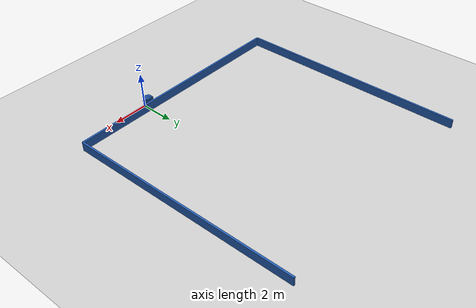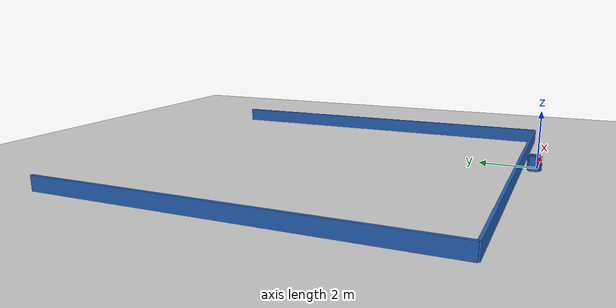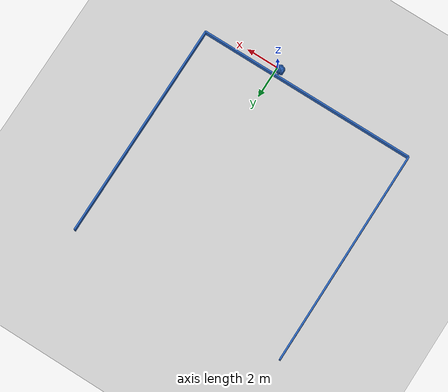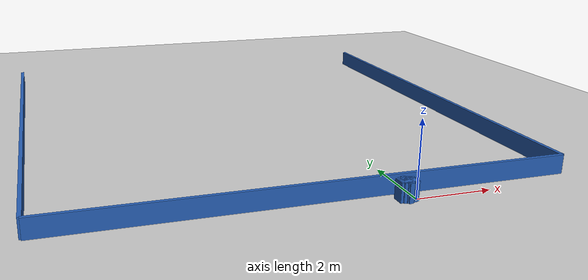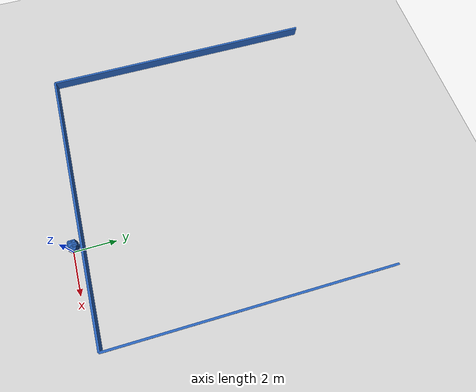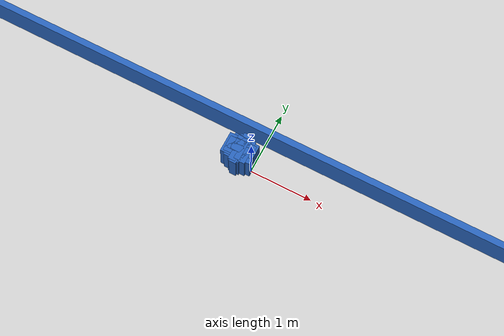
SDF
<?xml version="1.0" ?>
    <sdf version="1.5">
      <world name="default">
        <!-- A global light source -->
        <include>
          <uri>model://sun</uri>
        </include>
        <!-- A ground plane -->
        <include>
          <uri>model://ground_plane</uri>
        </include>

    <model name='libopen_space_final_T2B_106_71'>
      <static>1</static>
      <pose frame=''>-0.225000 0.075000 0.000000 0.000000 0.000000 0.000000</pose>
      <link name='link'>
        <inertial>
          <mass>1</mass>
          <inertia>
            <ixx>0.145833</ixx>
            <ixy>0</ixy>
            <ixz>0</ixz>
            <iyy>0.145833</iyy>
            <iyz>0</iyz>
            <izz>0.125</izz>
          </inertia>
        </inertial>
        <collision name='collision'>
          <geometry>
            <box>
              <size>0.35 0.14 1</size>
            </box>
          </geometry>
          <max_contacts>10</max_contacts>
          <surface>
            <contact>
              <ode/>
            </contact>
            <bounce/>
            <friction>
              <torsional>
                <ode/>
              </torsional>
              <ode/>
            </friction>
          </surface>
        </collision>
        <visual name='visual'>
          <geometry>
            <box>
              <size>0.35 0.14 1</size>
            </box>
          </geometry>
	    <material>
              <ambient>0.152000 0.379000 0.720000 1</ambient>
	      <diffuse>0.152000 0.379000 0.720000 1</diffuse>
          </material>
          <material>
            <script>
              <name>Gazebo/Grey</name>
              <uri>file://media/materials/scripts/gazebo.material</uri>
            </script>
          </material>
        </visual>
        <self_collide>0</self_collide>
        <kinematic>0</kinematic>
        <gravity>1</gravity>
      </link>
      <plugin name='libopen_space_final_T2B_106_71' filename='libopen_space_final_T2B_106_71.so'/>
    </model>

    <model name='libopen_space_final_T2B_67_46'>
      <static>1</static>
      <pose frame=''>-0.225000 0.075000 0.000000 0.000000 0.000000 0.000000</pose>
      <link name='link'>
        <inertial>
          <mass>1</mass>
          <inertia>
            <ixx>0.145833</ixx>
            <ixy>0</ixy>
            <ixz>0</ixz>
            <iyy>0.145833</iyy>
            <iyz>0</iyz>
            <izz>0.125</izz>
          </inertia>
        </inertial>
        <collision name='collision'>
          <geometry>
            <box>
              <size>0.26 0.13 1</size>
            </box>
          </geometry>
          <max_contacts>10</max_contacts>
          <surface>
            <contact>
              <ode/>
            </contact>
            <bounce/>
            <friction>
              <torsional>
                <ode/>
              </torsional>
              <ode/>
            </friction>
          </surface>
        </collision>
        <visual name='visual'>
          <geometry>
            <box>
              <size>0.26 0.13 1</size>
            </box>
          </geometry>
	    <material>
              <ambient>0.152000 0.379000 0.720000 1</ambient>
	      <diffuse>0.152000 0.379000 0.720000 1</diffuse>
          </material>
          <material>
            <script>
              <name>Gazebo/Grey</name>
              <uri>file://media/materials/scripts/gazebo.material</uri>
            </script>
          </material>
        </visual>
        <self_collide>0</self_collide>
        <kinematic>0</kinematic>
        <gravity>1</gravity>
      </link>
      <plugin name='libopen_space_final_T2B_67_46' filename='libopen_space_final_T2B_67_46.so'/>
    </model>

    <model name='libopen_space_final_T2B_80_26'>
      <static>1</static>
      <pose frame=''>-0.225000 0.075000 0.000000 0.000000 0.000000 0.000000</pose>
      <link name='link'>
        <inertial>
          <mass>1</mass>
          <inertia>
            <ixx>0.145833</ixx>
            <ixy>0</ixy>
            <ixz>0</ixz>
            <iyy>0.145833</iyy>
            <iyz>0</iyz>
            <izz>0.125</izz>
          </inertia>
        </inertial>
        <collision name='collision'>
          <geometry>
            <box>
              <size>0.17 0.18 1</size>
            </box>
          </geometry>
          <max_contacts>10</max_contacts>
          <surface>
            <contact>
              <ode/>
            </contact>
            <bounce/>
            <friction>
              <torsional>
                <ode/>
              </torsional>
              <ode/>
            </friction>
          </surface>
        </collision>
        <visual name='visual'>
          <geometry>
            <box>
              <size>0.17 0.18 1</size>
            </box>
          </geometry>
	    <material>
              <ambient>0.152000 0.379000 0.720000 1</ambient>
	      <diffuse>0.152000 0.379000 0.720000 1</diffuse>
          </material>
          <material>
            <script>
              <name>Gazebo/Grey</name>
              <uri>file://media/materials/scripts/gazebo.material</uri>
            </script>
          </material>
        </visual>
        <self_collide>0</self_collide>
        <kinematic>0</kinematic>
        <gravity>1</gravity>
      </link>
      <plugin name='libopen_space_final_T2B_80_26' filename='libopen_space_final_T2B_80_26.so'/>
    </model>

    <model name='libopen_space_final_T2B_118_50'>
      <static>1</static>
      <pose frame=''>-0.225000 0.075000 0.000000 0.000000 0.000000 0.000000</pose>
      <link name='link'>
        <inertial>
          <mass>1</mass>
          <inertia>
            <ixx>0.145833</ixx>
            <ixy>0</ixy>
            <ixz>0</ixz>
            <iyy>0.145833</iyy>
            <iyz>0</iyz>
            <izz>0.125</izz>
          </inertia>
        </inertial>
        <collision name='collision'>
          <geometry>
            <box>
              <size>0.42 0.26 1</size>
            </box>
          </geometry>
          <max_contacts>10</max_contacts>
          <surface>
            <contact>
              <ode/>
            </contact>
            <bounce/>
            <friction>
              <torsional>
                <ode/>
              </torsional>
              <ode/>
            </friction>
          </surface>
        </collision>
        <visual name='visual'>
          <geometry>
            <box>
              <size>0.42 0.26 1</size>
            </box>
          </geometry>
	    <material>
              <ambient>0.152000 0.379000 0.720000 1</ambient>
	      <diffuse>0.152000 0.379000 0.720000 1</diffuse>
          </material>
          <material>
            <script>
              <name>Gazebo/Grey</name>
              <uri>file://media/materials/scripts/gazebo.material</uri>
            </script>
          </material>
        </visual>
        <self_collide>0</self_collide>
        <kinematic>0</kinematic>
        <gravity>1</gravity>
      </link>
      <plugin name='libopen_space_final_T2B_118_50' filename='libopen_space_final_T2B_118_50.so'/>
    </model>

    <model name='libopen_space_final_T2B_112_98'>
      <static>1</static>
      <pose frame=''>-0.225000 0.075000 0.000000 0.000000 0.000000 0.000000</pose>
      <link name='link'>
        <inertial>
          <mass>1</mass>
          <inertia>
            <ixx>0.145833</ixx>
            <ixy>0</ixy>
            <ixz>0</ixz>
            <iyy>0.145833</iyy>
            <iyz>0</iyz>
            <izz>0.125</izz>
          </inertia>
        </inertial>
        <collision name='collision'>
          <geometry>
            <box>
              <size>0.15 0.35 1</size>
            </box>
          </geometry>
          <max_contacts>10</max_contacts>
          <surface>
            <contact>
              <ode/>
            </contact>
            <bounce/>
            <friction>
              <torsional>
                <ode/>
              </torsional>
              <ode/>
            </friction>
          </surface>
        </collision>
        <visual name='visual'>
          <geometry>
            <box>
              <size>0.15 0.35 1</size>
            </box>
          </geometry>
	    <material>
              <ambient>0.152000 0.379000 0.720000 1</ambient>
	      <diffuse>0.152000 0.379000 0.720000 1</diffuse>
          </material>
          <material>
            <script>
              <name>Gazebo/Grey</name>
              <uri>file://media/materials/scripts/gazebo.material</uri>
            </script>
          </material>
        </visual>
        <self_collide>0</self_collide>
        <kinematic>0</kinematic>
        <gravity>1</gravity>
      </link>
      <plugin name='libopen_space_final_T2B_112_98' filename='libopen_space_final_T2B_112_98.so'/>
    </model>

    <model name='libopen_space_final_T2B_56_75'>
      <static>1</static>
      <pose frame=''>-0.225000 0.075000 0.000000 0.000000 0.000000 0.000000</pose>
      <link name='link'>
        <inertial>
          <mass>1</mass>
          <inertia>
            <ixx>0.145833</ixx>
            <ixy>0</ixy>
            <ixz>0</ixz>
            <iyy>0.145833</iyy>
            <iyz>0</iyz>
            <izz>0.125</izz>
          </inertia>
        </inertial>
        <collision name='collision'>
          <geometry>
            <box>
              <size>0.48 0.32 1</size>
            </box>
          </geometry>
          <max_contacts>10</max_contacts>
          <surface>
            <contact>
              <ode/>
            </contact>
            <bounce/>
            <friction>
              <torsional>
                <ode/>
              </torsional>
              <ode/>
            </friction>
          </surface>
        </collision>
        <visual name='visual'>
          <geometry>
            <box>
              <size>0.48 0.32 1</size>
            </box>
          </geometry>
	    <material>
              <ambient>0.152000 0.379000 0.720000 1</ambient>
	      <diffuse>0.152000 0.379000 0.720000 1</diffuse>
          </material>
          <material>
            <script>
              <name>Gazebo/Grey</name>
              <uri>file://media/materials/scripts/gazebo.material</uri>
            </script>
          </material>
        </visual>
        <self_collide>0</self_collide>
        <kinematic>0</kinematic>
        <gravity>1</gravity>
      </link>
      <plugin name='libopen_space_final_T2B_56_75' filename='libopen_space_final_T2B_56_75.so'/>
    </model>

    <model name='libopen_space_final_T2B_126_78'>
      <static>1</static>
      <pose frame=''>-0.225000 0.075000 0.000000 0.000000 0.000000 0.000000</pose>
      <link name='link'>
        <inertial>
          <mass>1</mass>
          <inertia>
            <ixx>0.145833</ixx>
            <ixy>0</ixy>
            <ixz>0</ixz>
            <iyy>0.145833</iyy>
            <iyz>0</iyz>
            <izz>0.125</izz>
          </inertia>
        </inertial>
        <collision name='collision'>
          <geometry>
            <box>
              <size>0.22 0.24 1</size>
            </box>
          </geometry>
          <max_contacts>10</max_contacts>
          <surface>
            <contact>
              <ode/>
            </contact>
            <bounce/>
            <friction>
              <torsional>
                <ode/>
              </torsional>
              <ode/>
            </friction>
          </surface>
        </collision>
        <visual name='visual'>
          <geometry>
            <box>
              <size>0.22 0.24 1</size>
            </box>
          </geometry>
	    <material>
              <ambient>0.152000 0.379000 0.720000 1</ambient>
	      <diffuse>0.152000 0.379000 0.720000 1</diffuse>
          </material>
          <material>
            <script>
              <name>Gazebo/Grey</name>
              <uri>file://media/materials/scripts/gazebo.material</uri>
            </script>
          </material>
        </visual>
        <self_collide>0</self_collide>
        <kinematic>0</kinematic>
        <gravity>1</gravity>
      </link>
      <plugin name='libopen_space_final_T2B_126_78' filename='libopen_space_final_T2B_126_78.so'/>
    </model>

    <model name='libopen_space_final_T2B_127_53'>
      <static>1</static>
      <pose frame=''>-0.225000 0.075000 0.000000 0.000000 0.000000 0.000000</pose>
      <link name='link'>
        <inertial>
          <mass>1</mass>
          <inertia>
            <ixx>0.145833</ixx>
            <ixy>0</ixy>
            <ixz>0</ixz>
            <iyy>0.145833</iyy>
            <iyz>0</iyz>
            <izz>0.125</izz>
          </inertia>
        </inertial>
        <collision name='collision'>
          <geometry>
            <box>
              <size>0.20 0.31 1</size>
            </box>
          </geometry>
          <max_contacts>10</max_contacts>
          <surface>
            <contact>
              <ode/>
            </contact>
            <bounce/>
            <friction>
              <torsional>
                <ode/>
              </torsional>
              <ode/>
            </friction>
          </surface>
        </collision>
        <visual name='visual'>
          <geometry>
            <box>
              <size>0.20 0.31 1</size>
            </box>
          </geometry>
	    <material>
              <ambient>0.152000 0.379000 0.720000 1</ambient>
	      <diffuse>0.152000 0.379000 0.720000 1</diffuse>
          </material>
          <material>
            <script>
              <name>Gazebo/Grey</name>
              <uri>file://media/materials/scripts/gazebo.material</uri>
            </script>
          </material>
        </visual>
        <self_collide>0</self_collide>
        <kinematic>0</kinematic>
        <gravity>1</gravity>
      </link>
      <plugin name='libopen_space_final_T2B_127_53' filename='libopen_space_final_T2B_127_53.so'/>
    </model>

    <model name='libopen_space_final_T2B_139_84'>
      <static>1</static>
      <pose frame=''>-0.225000 0.075000 0.000000 0.000000 0.000000 0.000000</pose>
      <link name='link'>
        <inertial>
          <mass>1</mass>
          <inertia>
            <ixx>0.145833</ixx>
            <ixy>0</ixy>
            <ixz>0</ixz>
            <iyy>0.145833</iyy>
            <iyz>0</iyz>
            <izz>0.125</izz>
          </inertia>
        </inertial>
        <collision name='collision'>
          <geometry>
            <box>
              <size>0.29 0.27 1</size>
            </box>
          </geometry>
          <max_contacts>10</max_contacts>
          <surface>
            <contact>
              <ode/>
            </contact>
            <bounce/>
            <friction>
              <torsional>
                <ode/>
              </torsional>
              <ode/>
            </friction>
          </surface>
        </collision>
        <visual name='visual'>
          <geometry>
            <box>
              <size>0.29 0.27 1</size>
            </box>
          </geometry>
	    <material>
              <ambient>0.152000 0.379000 0.720000 1</ambient>
	      <diffuse>0.152000 0.379000 0.720000 1</diffuse>
          </material>
          <material>
            <script>
              <name>Gazebo/Grey</name>
              <uri>file://media/materials/scripts/gazebo.material</uri>
            </script>
          </material>
        </visual>
        <self_collide>0</self_collide>
        <kinematic>0</kinematic>
        <gravity>1</gravity>
      </link>
      <plugin name='libopen_space_final_T2B_139_84' filename='libopen_space_final_T2B_139_84.so'/>
    </model>

    <model name='libopen_space_final_T2B_77_58'>
      <static>1</static>
      <pose frame=''>-0.225000 0.075000 0.000000 0.000000 0.000000 0.000000</pose>
      <link name='link'>
        <inertial>
          <mass>1</mass>
          <inertia>
            <ixx>0.145833</ixx>
            <ixy>0</ixy>
            <ixz>0</ixz>
            <iyy>0.145833</iyy>
            <iyz>0</iyz>
            <izz>0.125</izz>
          </inertia>
        </inertial>
        <collision name='collision'>
          <geometry>
            <box>
              <size>0.23 0.36 1</size>
            </box>
          </geometry>
          <max_contacts>10</max_contacts>
          <surface>
            <contact>
              <ode/>
            </contact>
            <bounce/>
            <friction>
              <torsional>
                <ode/>
              </torsional>
              <ode/>
            </friction>
          </surface>
        </collision>
        <visual name='visual'>
          <geometry>
            <box>
              <size>0.23 0.36 1</size>
            </box>
          </geometry>
	    <material>
              <ambient>0.152000 0.379000 0.720000 1</ambient>
	      <diffuse>0.152000 0.379000 0.720000 1</diffuse>
          </material>
          <material>
            <script>
              <name>Gazebo/Grey</name>
              <uri>file://media/materials/scripts/gazebo.material</uri>
            </script>
          </material>
        </visual>
        <self_collide>0</self_collide>
        <kinematic>0</kinematic>
        <gravity>1</gravity>
      </link>
      <plugin name='libopen_space_final_T2B_77_58' filename='libopen_space_final_T2B_77_58.so'/>
    </model>

    <model name='libopen_space_final_T2B_94_79'>
      <static>1</static>
      <pose frame=''>-0.225000 0.075000 0.000000 0.000000 0.000000 0.000000</pose>
      <link name='link'>
        <inertial>
          <mass>1</mass>
          <inertia>
            <ixx>0.145833</ixx>
            <ixy>0</ixy>
            <ixz>0</ixz>
            <iyy>0.145833</iyy>
            <iyz>0</iyz>
            <izz>0.125</izz>
          </inertia>
        </inertial>
        <collision name='collision'>
          <geometry>
            <box>
              <size>0.34 0.38 1</size>
            </box>
          </geometry>
          <max_contacts>10</max_contacts>
          <surface>
            <contact>
              <ode/>
            </contact>
            <bounce/>
            <friction>
              <torsional>
                <ode/>
              </torsional>
              <ode/>
            </friction>
          </surface>
        </collision>
        <visual name='visual'>
          <geometry>
            <box>
              <size>0.34 0.38 1</size>
            </box>
          </geometry>
	    <material>
              <ambient>0.152000 0.379000 0.720000 1</ambient>
	      <diffuse>0.152000 0.379000 0.720000 1</diffuse>
          </material>
          <material>
            <script>
              <name>Gazebo/Grey</name>
              <uri>file://media/materials/scripts/gazebo.material</uri>
            </script>
          </material>
        </visual>
        <self_collide>0</self_collide>
        <kinematic>0</kinematic>
        <gravity>1</gravity>
      </link>
      <plugin name='libopen_space_final_T2B_94_79' filename='libopen_space_final_T2B_94_79.so'/>
    </model>

    <model name='libopen_space_final_T2B_99_64'>
      <static>1</static>
      <pose frame=''>-0.225000 0.075000 0.000000 0.000000 0.000000 0.000000</pose>
      <link name='link'>
        <inertial>
          <mass>1</mass>
          <inertia>
            <ixx>0.145833</ixx>
            <ixy>0</ixy>
            <ixz>0</ixz>
            <iyy>0.145833</iyy>
            <iyz>0</iyz>
            <izz>0.125</izz>
          </inertia>
        </inertial>
        <collision name='collision'>
          <geometry>
            <box>
              <size>0.17 0.43 1</size>
            </box>
          </geometry>
          <max_contacts>10</max_contacts>
          <surface>
            <contact>
              <ode/>
            </contact>
            <bounce/>
            <friction>
              <torsional>
                <ode/>
              </torsional>
              <ode/>
            </friction>
          </surface>
        </collision>
        <visual name='visual'>
          <geometry>
            <box>
              <size>0.17 0.43 1</size>
            </box>
          </geometry>
	    <material>
              <ambient>0.152000 0.379000 0.720000 1</ambient>
	      <diffuse>0.152000 0.379000 0.720000 1</diffuse>
          </material>
          <material>
            <script>
              <name>Gazebo/Grey</name>
              <uri>file://media/materials/scripts/gazebo.material</uri>
            </script>
          </material>
        </visual>
        <self_collide>0</self_collide>
        <kinematic>0</kinematic>
        <gravity>1</gravity>
      </link>
      <plugin name='libopen_space_final_T2B_99_64' filename='libopen_space_final_T2B_99_64.so'/>
    </model>

    <model name='libopen_space_final_T2B_116_74'>
      <static>1</static>
      <pose frame=''>-0.225000 0.075000 0.000000 0.000000 0.000000 0.000000</pose>
      <link name='link'>
        <inertial>
          <mass>1</mass>
          <inertia>
            <ixx>0.145833</ixx>
            <ixy>0</ixy>
            <ixz>0</ixz>
            <iyy>0.145833</iyy>
            <iyz>0</iyz>
            <izz>0.125</izz>
          </inertia>
        </inertial>
        <collision name='collision'>
          <geometry>
            <box>
              <size>0.11 0.49 1</size>
            </box>
          </geometry>
          <max_contacts>10</max_contacts>
          <surface>
            <contact>
              <ode/>
            </contact>
            <bounce/>
            <friction>
              <torsional>
                <ode/>
              </torsional>
              <ode/>
            </friction>
          </surface>
        </collision>
        <visual name='visual'>
          <geometry>
            <box>
              <size>0.11 0.49 1</size>
            </box>
          </geometry>
	    <material>
              <ambient>0.152000 0.379000 0.720000 1</ambient>
	      <diffuse>0.152000 0.379000 0.720000 1</diffuse>
          </material>
          <material>
            <script>
              <name>Gazebo/Grey</name>
              <uri>file://media/materials/scripts/gazebo.material</uri>
            </script>
          </material>
        </visual>
        <self_collide>0</self_collide>
        <kinematic>0</kinematic>
        <gravity>1</gravity>
      </link>
      <plugin name='libopen_space_final_T2B_116_74' filename='libopen_space_final_T2B_116_74.so'/>
    </model>

    <model name='libopen_space_final_T2B_90_76'>
      <static>1</static>
      <pose frame=''>-0.225000 0.075000 0.000000 0.000000 0.000000 0.000000</pose>
      <link name='link'>
        <inertial>
          <mass>1</mass>
          <inertia>
            <ixx>0.145833</ixx>
            <ixy>0</ixy>
            <ixz>0</ixz>
            <iyy>0.145833</iyy>
            <iyz>0</iyz>
            <izz>0.125</izz>
          </inertia>
        </inertial>
        <collision name='collision'>
          <geometry>
            <box>
              <size>0.42 0.23 1</size>
            </box>
          </geometry>
          <max_contacts>10</max_contacts>
          <surface>
            <contact>
              <ode/>
            </contact>
            <bounce/>
            <friction>
              <torsional>
                <ode/>
              </torsional>
              <ode/>
            </friction>
          </surface>
        </collision>
        <visual name='visual'>
          <geometry>
            <box>
              <size>0.42 0.23 1</size>
            </box>
          </geometry>
	    <material>
              <ambient>0.152000 0.379000 0.720000 1</ambient>
	      <diffuse>0.152000 0.379000 0.720000 1</diffuse>
          </material>
          <material>
            <script>
              <name>Gazebo/Grey</name>
              <uri>file://media/materials/scripts/gazebo.material</uri>
            </script>
          </material>
        </visual>
        <self_collide>0</self_collide>
        <kinematic>0</kinematic>
        <gravity>1</gravity>
      </link>
      <plugin name='libopen_space_final_T2B_90_76' filename='libopen_space_final_T2B_90_76.so'/>
    </model>

        <model name='bottom_wall'>
          <static>1</static>
          <pose frame=''>-2.25 0.5 0.000000 0.000000 0.000000 1.57079632</pose>
          <link name='link'>
            <inertial>
            <mass>1</mass>
            <inertia>
              <ixx>0.145833</ixx>
              <ixy>0</ixy>
              <ixz>0</ixz>
              <iyy>0.145833</iyy>
              <iyz>0</iyz>
              <izz>0.125</izz>
            </inertia>
            </inertial>
            <collision name='collision'>
            <geometry>
              <box>
              <size>0.1 13.5 1</size>
              </box>
            </geometry>
            <max_contacts>10</max_contacts>
            <surface>
              <contact>
              <ode/>
              </contact>
              <bounce/>
              <friction>
              <torsional>
                <ode/>
              </torsional>
              <ode/>
              </friction>
            </surface>
            </collision>
            <visual name='visual'>
            <geometry>
              <box>
              <size>0.1 13.5 1</size>
              </box>
            </geometry>
            <material>
              <ambient>0.152000 0.379000 0.720000 1</ambient>
            <diffuse>0.152000 0.379000 0.720000 1</diffuse>
            </material>
            <material>
              <script>
              <name>Gazebo/Grey</name>
              <uri>file://media/materials/scripts/gazebo.material</uri>
              </script>
            </material>
            </visual>
            <self_collide>0</self_collide>
            <kinematic>0</kinematic>
            <gravity>1</gravity>
          </link>
        </model>

        <model name='left_wall'>
          <static>1</static>
          <pose frame=''>-9 7.25 0.000000 0.000000 0.000000 0.000000</pose>
          <link name='link'>
            <inertial>
            <mass>1</mass>
            <inertia>
              <ixx>0.145833</ixx>
              <ixy>0</ixy>
              <ixz>0</ixz>
              <iyy>0.145833</iyy>
              <iyz>0</iyz>
              <izz>0.125</izz>
            </inertia>
            </inertial>
            <collision name='collision'>
            <geometry>
              <box>
              <size>0.1 13.5 1</size>
              </box>
            </geometry>
            <max_contacts>10</max_contacts>
            <surface>
              <contact>
              <ode/>
              </contact>
              <bounce/>
              <friction>
              <torsional>
                <ode/>
              </torsional>
              <ode/>
              </friction>
            </surface>
            </collision>
            <visual name='visual'>
            <geometry>
              <box>
              <size>0.1 13.5 1</size>
              </box>
            </geometry>
            <material>
              <ambient>0.152000 0.379000 0.720000 1</ambient>
            <diffuse>0.152000 0.379000 0.720000 1</diffuse>
            </material>
            <material>
              <script>
              <name>Gazebo/Grey</name>
              <uri>file://media/materials/scripts/gazebo.material</uri>
              </script>
            </material>
            </visual>
            <self_collide>0</self_collide>
            <kinematic>0</kinematic>
            <gravity>1</gravity>
          </link>
        </model>

        <model name='right_wall'>
          <static>1</static>
          <pose frame=''>4.5 7.25 0.000000 0.000000 0.000000 0.000000</pose>
          <link name='link'>
            <inertial>
            <mass>1</mass>
            <inertia>
              <ixx>0.145833</ixx>
              <ixy>0</ixy>
              <ixz>0</ixz>
              <iyy>0.145833</iyy>
              <iyz>0</iyz>
              <izz>0.125</izz>
            </inertia>
            </inertial>
            <collision name='collision'>
            <geometry>
              <box>
              <size>0.1 13.5 1</size>
              </box>
            </geometry>
            <max_contacts>10</max_contacts>
            <surface>
              <contact>
              <ode/>
              </contact>
              <bounce/>
              <friction>
              <torsional>
                <ode/>
              </torsional>
              <ode/>
              </friction>
            </surface>
            </collision>
            <visual name='visual'>
            <geometry>
              <box>
              <size>0.1 13.5 1</size>
              </box>
            </geometry>
            <material>
              <ambient>0.152000 0.379000 0.720000 1</ambient>
            <diffuse>0.152000 0.379000 0.720000 1</diffuse>
            </material>
            <material>
              <script>
              <name>Gazebo/Grey</name>
              <uri>file://media/materials/scripts/gazebo.material</uri>
              </script>
            </material>
            </visual>
            <self_collide>0</self_collide>
            <kinematic>0</kinematic>
            <gravity>1</gravity>
          </link>
        </model>

      </world>
    </sdf>"
